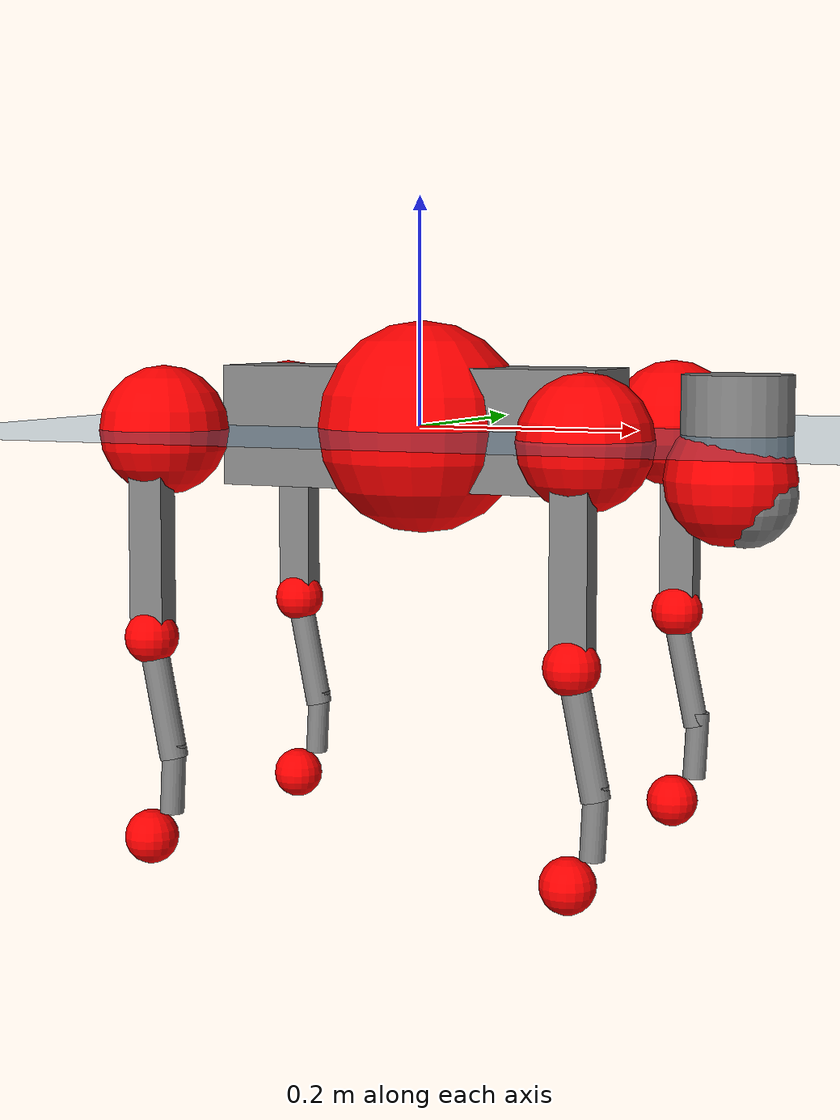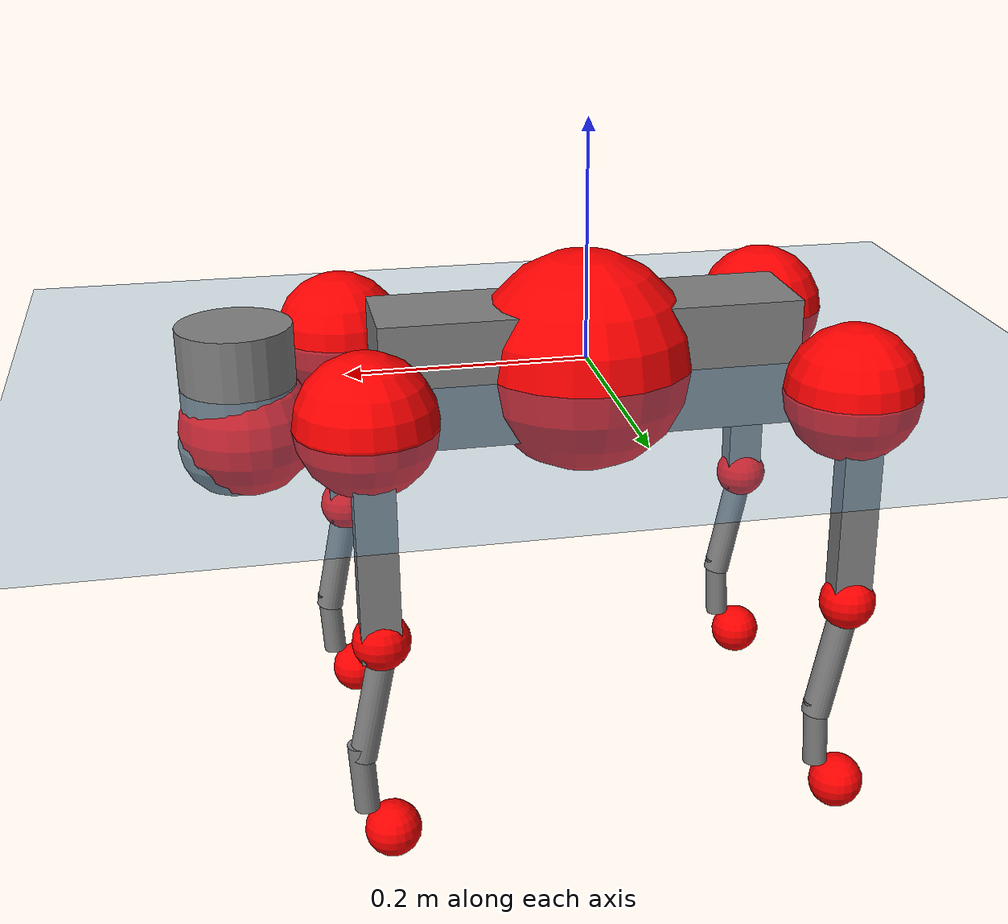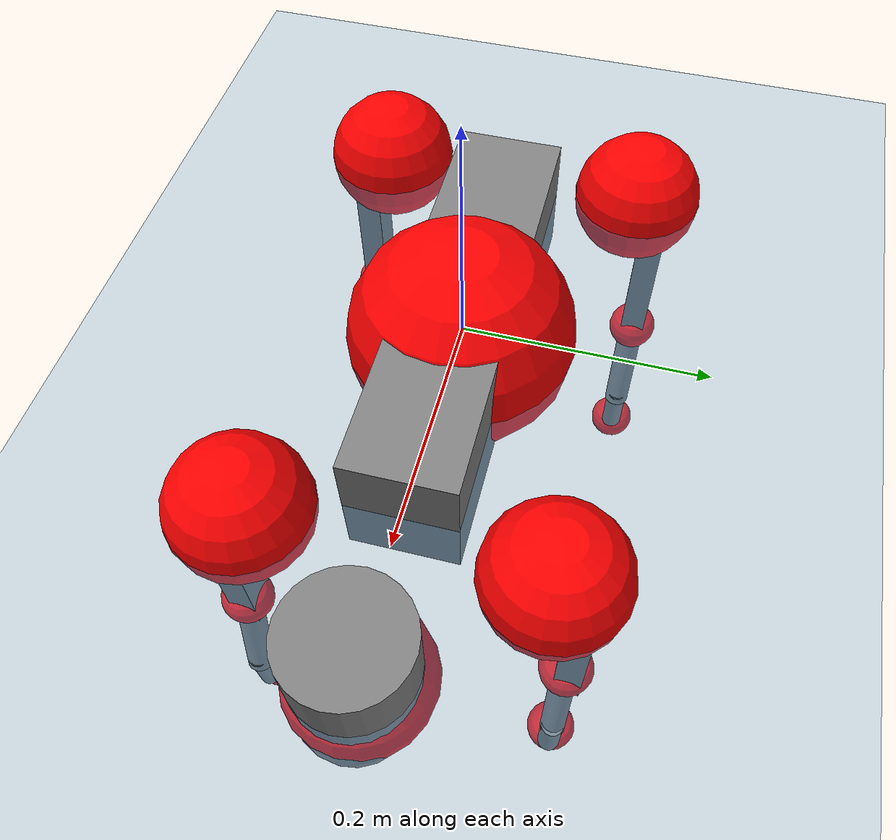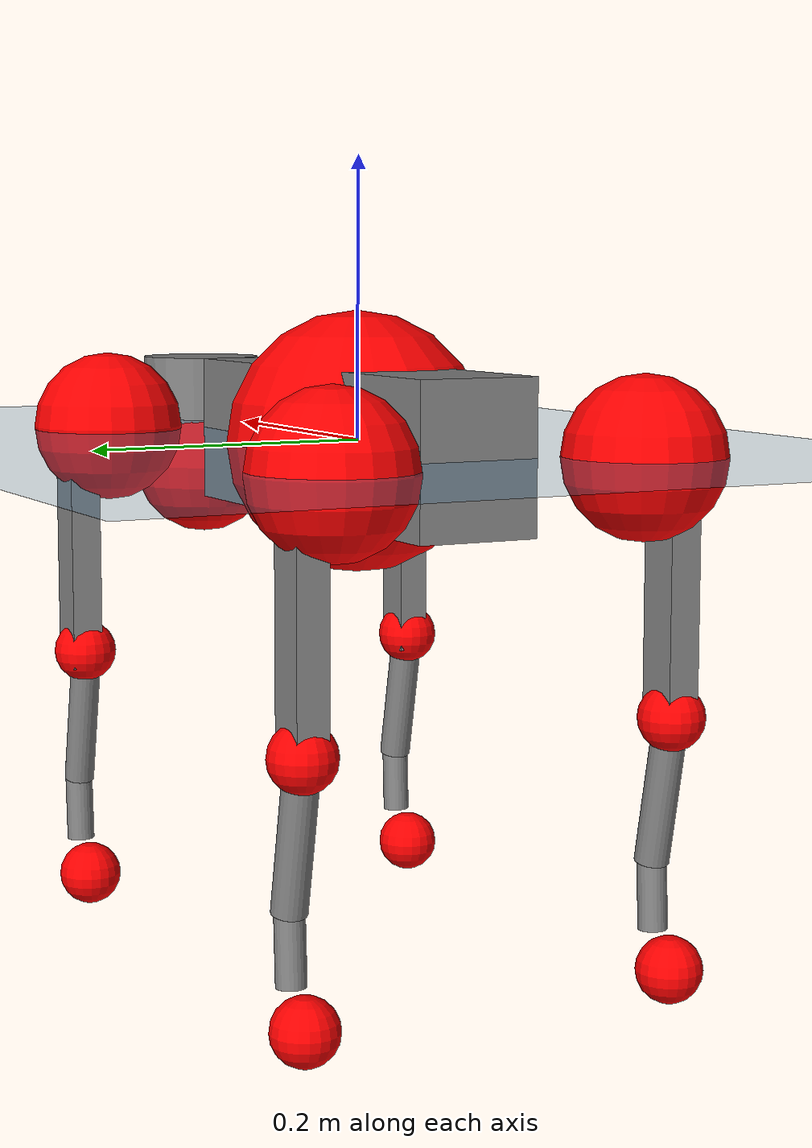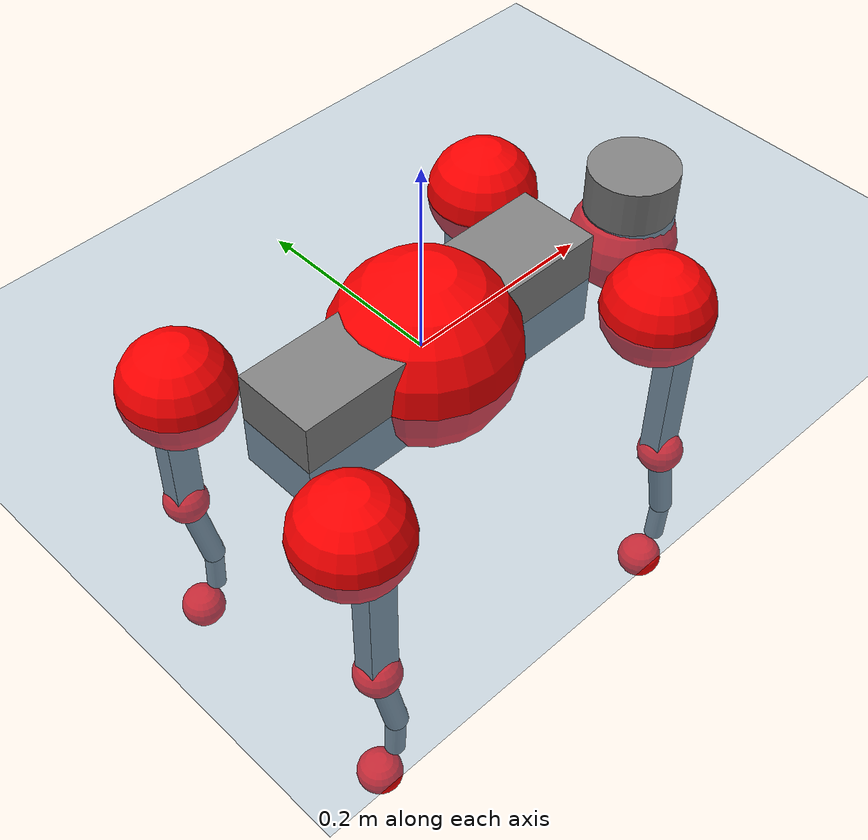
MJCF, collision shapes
<mujoco model="go2">
  <compiler angle="radian" assetdir="assets" balanceinertia="true" inertiafromgeom="false"/>

  <option timestep="0.005" density="1.2" viscosity="2e-05"/>

  <size nkey="1"/>

  <visual>
    <quality shadowsize="8192"/>
    <map shadowclip="0.5"/>
  </visual>

  <default>
    <default class="/">
      <geom contype="0" conaffinity="0" group="1" solref="-1000 -80"/>
      <site size="0.01 0.005 0.005" group="5"/>
      <general forcelimited="true" biastype="affine" gainprm="20" biasprm="0 -20 -0.5"/>
      <default class="go2">
        <joint armature="0.01" damping="0.01" frictionloss="0.2"/>
        <geom condim="1" margin="0.001"/>
        <default class="visual">
          <geom type="mesh" group="2"/>
        </default>
        <default class="collision">
          <geom group="3"/>
          <default class="foot">
            <geom size="0.022 0 0" condim="6" priority="1" friction="0.8 0.02 0.01" solimp="0.015 1 0.022"/>
          </default>
        </default>
        <default class="reward_collision_sphere">
          <geom group="5" rgba="1 0 0 1"/>
        </default>
      </default>
    </default>
  </default>

  <asset>
    <texture type="skybox" colorspace="auto" name="//unnamed_texture_0" builtin="gradient" rgb1="0.95 0.95 0.95" rgb2="0.95 0.95 0.95" width="100" height="600"/>
    <texture type="2d" colorspace="auto" name="texplane" builtin="checker" rgb1="0.345 0.575 0.748" rgb2="0.345 0.575 0.748" markrgb="1 1 1" width="512" height="512"/>
    <material name="MatPlane" class="/" texture="texplane" texuniform="true" texrepeat="2 2" specular="0.9"/>
    <material name="metal" class="/" rgba="0.9 0.95 0.95 1"/>
    <material name="black" class="/" rgba="0 0 0 1"/>
    <material name="white" class="/"/>
    <material name="gray" class="/" rgba="0.671705 0.692426 0.77427 1"/>
    <mesh name="base_0" class="/" file="base_0.obj"/>
    <mesh name="base_1" class="/" file="base_1.obj"/>
    <mesh name="base_2" class="/" file="base_2.obj"/>
    <mesh name="base_3" class="/" file="base_3.obj"/>
    <mesh name="base_4" class="/" file="base_4.obj"/>
    <mesh name="hip_0" class="/" file="hip_0.obj"/>
    <mesh name="hip_1" class="/" file="hip_1.obj"/>
    <mesh name="thigh_0" class="/" file="thigh_0.obj"/>
    <mesh name="thigh_1" class="/" file="thigh_1.obj"/>
    <mesh name="thigh_mirror_0" class="/" file="thigh_mirror_0.obj"/>
    <mesh name="thigh_mirror_1" class="/" file="thigh_mirror_1.obj"/>
    <mesh name="calf_0" class="/" file="calf_0.obj"/>
    <mesh name="calf_1" class="/" file="calf_1.obj"/>
    <mesh name="calf_mirror_0" class="/" file="calf_mirror_0.obj"/>
    <mesh name="calf_mirror_1" class="/" file="calf_mirror_1.obj"/>
    <mesh name="foot" class="/" file="foot.obj"/>
  </asset>

  <worldbody>
    <geom name="floor" class="/" size="100 100 0.125" type="plane" group="0" material="MatPlane"/>
    <light name="toplight_shadow" class="/" pos="0 0 5" dir="0.0990148 0.0990148 -0.990148" type="directional" ambient="0.04 0.04 0.04" diffuse="0.55 0.55 0.55" specular="0.12 0.12 0.12"/>
    <light name="toplight_fill" class="/" pos="0 0 5" dir="0.0990148 0.0990148 -0.990148" type="directional" castshadow="false" ambient="0.04 0.04 0.04" diffuse="0.3 0.3 0.3" specular="0.08 0.08 0.08"/>
    <body name="trunk" childclass="go2" pos="0.00251834 -6.20223e-05 -0.000886535" quat="0.999999 0.00065668 0.00112922 0.000374446">
      <inertial pos="0.01818 0.000785346 -0.00380189" quat="-0.00192546 0.715395 0.00259177 0.698713" mass="5.41726" diaginertia="0.10462 0.0864314 0.00916426"/>
      <joint name="//unnamed_joint_0" type="free" armature="0" damping="0" frictionloss="0"/>
      <geom name="//unnamed_geom_1" class="visual" material="black" mesh="base_0"/>
      <geom name="//unnamed_geom_2" class="visual" material="black" mesh="base_1"/>
      <geom name="//unnamed_geom_3" class="visual" material="black" mesh="base_2"/>
      <geom name="//unnamed_geom_4" class="visual" material="white" mesh="base_3"/>
      <geom name="//unnamed_geom_5" class="visual" material="gray" mesh="base_4"/>
      <geom name="trunk_1" class="collision" size="0.175064 0.0435101 0.0530497" type="box"/>
      <geom name="trunk_2" class="collision" size="0.0465348 0.0418813" pos="0.283724 0 0.00821991" type="cylinder"/>
      <geom name="trunk_3" class="collision" size="0.0437427" pos="0.291688 0 -0.0493195"/>
      <geom name="//unnamed_geom_9" class="reward_collision_sphere" size="0.0930696"/>
      <geom name="//unnamed_geom_10" class="reward_collision_sphere" size="0.0558418" pos="0.278746 0 -0.0369896"/>
      <site name="imu" pos="-0.0247574 0.00710265 0.0484637" size="0.00930696"/>
      <camera name="track" pos="0 -1.94915 0" quat="0.707107 0.707107 0 0" mode="trackcom"/>
      <camera name="ego_camera" pos="0.310603 0 0.0369896" quat="-0.5 -0.5 0.5 0.5"/>
      <body name="FL_hip" pos="0.192756 0.0471098 0.00230032" quat="1 5.56922e-05 -8.58161e-05 0.00020611">
        <inertial pos="-0.00633486 -0.000156735 0.00107738" quat="0.496963 0.500663 0.503965 0.498382" mass="0.533571" diaginertia="0.000879839 0.000525162 0.000180159"/>
        <joint name="FL_hip_joint" pos="0 0 0" axis="0.999917 0.00465478 0.0119751" range="-0.996883 1.06144" armature="0.00912829" damping="0.0144529" frictionloss="0.18412"/>
        <geom name="//unnamed_geom_11" class="visual" material="metal" mesh="hip_0"/>
        <geom name="//unnamed_geom_12" class="visual" material="gray" mesh="hip_1"/>
        <geom name="//unnamed_geom_13" class="collision" size="0.042812 0.0186139" pos="0 0.0779661 0" quat="0.707107 0.707107 0 0" type="cylinder"/>
        <geom name="//unnamed_geom_14" class="reward_collision_sphere" size="0.0558418" pos="0 0.0682204 0"/>
        <body name="FL_thigh" pos="-0.000179023 0.0934943 0.0027383" quat="0.999999 -0.00112703 0.000536988 -0.000140851">
          <inertial pos="-0.00179012 -0.0235539 -0.0294905" quat="0.829377 0.0850652 -0.0205307 0.551794" mass="0.898434" diaginertia="0.0057171 0.00498264 0.000329605"/>
          <joint name="FL_thigh_joint" pos="0 0 0" axis="-0.00166974 0.999975 0.00690929" range="-1.54841 3.48663" armature="0.00918402" damping="0.0118365" frictionloss="0.187508"/>
          <geom name="//unnamed_geom_15" class="visual" material="metal" mesh="thigh_0"/>
          <geom name="//unnamed_geom_16" class="visual" material="gray" mesh="thigh_1"/>
          <geom name="//unnamed_geom_17" class="collision" size="0.0991192 0.011401 0.0158218" pos="0 0 -0.0875421" quat="0.707107 0 0.707107 0" type="box"/>
          <body name="FL_calf" pos="-0.000977058 -0.0029702 -0.174633" quat="1 -0.000448301 0.000347973 -0.000720495">
            <inertial pos="0.00368465 -0.000298025 -0.113463" quat="0.710542 0.002466 -0.00468809 0.703635" mass="0.194262" diaginertia="0.0014694 0.00135897 2.04023e-05"/>
            <joint name="FL_calf_joint" pos="0 0 0" axis="0.01088 0.999916 -0.00699597" stiffness="0.0105644" range="-2.77842 -0.837419" armature="0.00980198" damping="0" frictionloss="0.198238"/>
            <geom name="//unnamed_geom_18" class="visual" material="gray" mesh="calf_0"/>
            <geom name="//unnamed_geom_19" class="visual" material="black" mesh="calf_1"/>
            <geom name="FL_calf0" class="collision" size="0.0111684 0.0558418" pos="0.00796417 0 -0.0493195" quat="0.994493 0 -0.104807 0" type="cylinder"/>
            <geom name="//unnamed_geom_21" class="collision" size="0.0102377 0.0302476" pos="0.0199104 0 -0.121655" quat="0.999688 0 0.0249974 0" type="cylinder"/>
            <geom name="//unnamed_geom_22" class="visual" pos="0 0 -0.175084" quat="1 0 0 0" material="black" mesh="foot"/>
            <geom name="FL_foot" class="foot" size="0.0182996" pos="-0.00199104 0 -0.175084"/>
            <geom name="//unnamed_geom_24" class="reward_collision_sphere" size="0.0232674"/>
            <geom name="//unnamed_geom_25" class="reward_collision_sphere" size="0.0232674" pos="-0.00199104 0 -0.175084"/>
            <site name="FL_foot" class="foot" pos="-0.00199104 0 -0.175084" size="0.00930696"/>
          </body>
        </body>
      </body>
      <body name="FR_hip" pos="0.192283 -0.0460479 -0.0019715" quat="0.999999 0.000438998 4.53746e-05 0.00108268">
        <inertial pos="-0.00372429 -0.00460056 -9.63798e-05" quat="0.48921 0.501541 0.50543 0.503657" mass="0.540667" diaginertia="0.000821767 0.000514552 0.000172212"/>
        <joint name="FR_hip_joint" pos="0 0 0" axis="0.999945 -0.0102322 0.00207376" stiffness="0.00080955" range="-1.054 1.05368" armature="0.00904032" damping="0.0115909" frictionloss="0.161139"/>
        <geom name="//unnamed_geom_26" class="visual" pos="0 1.32926e-09 5.70148e-08" quat="4.63268e-05 1 0 0" material="metal" mesh="hip_0"/>
        <geom name="//unnamed_geom_27" class="visual" pos="0 2.15489e-09 -1.41019e-07" quat="4.63268e-05 1 0 0" material="gray" mesh="hip_1"/>
        <geom name="//unnamed_geom_28" class="collision" size="0.042812 0.0186139" pos="0 -0.0779661 0" quat="0.707107 0.707107 0 0" type="cylinder"/>
        <geom name="//unnamed_geom_29" class="reward_collision_sphere" size="0.0558418" pos="0 -0.0682204 0"/>
        <body name="FR_thigh" pos="0.000422273 -0.0955403 -0.000329054" quat="1 -0.000110139 5.89253e-05 0.000111501">
          <inertial pos="-0.00187041 0.0193798 -0.0265384" quat="0.550866 -0.00988976 0.084348 0.830261" mass="0.939105" diaginertia="0.00576639 0.00509698 0.000336644"/>
          <joint name="FR_thigh_joint" pos="0 0 0" axis="0.00389754 -0.999987 0.00321316" range="-3.47422 1.62084" armature="0.00923486" damping="0.0138755" frictionloss="0.192475"/>
          <geom name="//unnamed_geom_30" class="visual" material="metal" mesh="thigh_mirror_0"/>
          <geom name="//unnamed_geom_31" class="visual" material="gray" mesh="thigh_mirror_1"/>
          <geom name="//unnamed_geom_32" class="collision" size="0.0991192 0.011401 0.0158218" pos="0 0 -0.0875421" quat="0.707107 0 0.707107 0" type="box"/>
          <body name="FR_calf" pos="0.00073912 -0.00298138 -0.175074" quat="1 1.18892e-05 1.58873e-06 -0.000134054">
            <inertial pos="0.00657252 0.000760113 -0.116128" quat="0.703984 0.00384741 0.0123548 0.710098" mass="0.193422" diaginertia="0.00145271 0.00128817 1.9348e-05"/>
            <joint name="FR_calf_joint" pos="0 0 0" axis="0.00074302 -0.999906 -0.0137006" range="0.839045 2.76825" armature="0.00943209" damping="0.0257369" frictionloss="0.183251"/>
            <geom name="//unnamed_geom_33" class="visual" material="gray" mesh="calf_mirror_0"/>
            <geom name="//unnamed_geom_34" class="visual" material="black" mesh="calf_mirror_1"/>
            <geom name="FR_calf0" class="collision" size="0.0120991 0.0558418" pos="0.00995521 0 -0.0493195" quat="0.995004 0 -0.0998334 0" type="cylinder"/>
            <geom name="//unnamed_geom_36" class="collision" size="0.0102377 0.0302476" pos="0.0199104 0 -0.121655" quat="0.999688 0 0.0249974 0" type="cylinder"/>
            <geom name="//unnamed_geom_37" class="visual" pos="0 0 -0.175084" quat="1 0 0 0" material="black" mesh="foot"/>
            <geom name="FR_foot" class="foot" size="0.022036" pos="-0.00199104 0 -0.175084"/>
            <geom name="//unnamed_geom_39" class="reward_collision_sphere" size="0.0232674"/>
            <geom name="//unnamed_geom_40" class="reward_collision_sphere" size="0.0232674" pos="-0.00199104 0 -0.175084"/>
            <site name="FR_foot" class="foot" pos="-0.00199104 0 -0.175084" size="0.00930696"/>
          </body>
        </body>
      </body>
      <body name="RL_hip" pos="-0.193069 0.0459576 -0.0026884" quat="1 6.26836e-05 0.000420517 -7.48399e-05">
        <inertial pos="0.00531522 0.00487431 -0.00221168" quat="0.50586 0.496275 0.506206 0.491499" mass="0.557556" diaginertia="0.000850405 0.00051355 0.000183811"/>
        <joint name="RL_hip_joint" pos="0 0 0" axis="-0.999864 0.0157474 -0.00499354" stiffness="0.0104045" range="-1.03402 1.01013" armature="0.00816316" damping="0.00814915" frictionloss="0.211605"/>
        <geom name="//unnamed_geom_41" class="visual" pos="-1.51172e-09 0 -2.96333e-07" quat="4.63268e-05 0 1 0" material="metal" mesh="hip_0"/>
        <geom name="//unnamed_geom_42" class="visual" pos="-2.45068e-09 0 -2.62805e-07" quat="4.63268e-05 0 1 0" material="gray" mesh="hip_1"/>
        <geom name="//unnamed_geom_43" class="collision" size="0.042812 0.0186139" pos="0 0.0779661 0" quat="0.707107 0.707107 0 0" type="cylinder"/>
        <geom name="//unnamed_geom_44" class="reward_collision_sphere" size="0.0558418" pos="0 0.0682204 0"/>
        <body name="RL_thigh" pos="-0.000207492 0.0894881 0.00224501" quat="1 -0.000274539 9.72688e-05 -0.000145296">
          <inertial pos="-0.00370664 -0.0211695 -0.0279458" quat="0.829275 0.0846865 -0.0203612 0.552011" mass="0.950219" diaginertia="0.00579367 0.00502019 0.000334958"/>
          <joint name="RL_thigh_joint" pos="0 0 0" axis="0.0125671 0.99992 -0.00110207" stiffness="0.0114168" range="-0.518755 4.54559" armature="0.0104176" damping="0.00139307" frictionloss="0.184774"/>
          <geom name="//unnamed_geom_45" class="visual" material="metal" mesh="thigh_0"/>
          <geom name="//unnamed_geom_46" class="visual" material="gray" mesh="thigh_1"/>
          <geom name="//unnamed_geom_47" class="collision" size="0.0991192 0.011401 0.0158218" pos="0 0 -0.0875421" quat="0.707107 0 0.707107 0" type="box"/>
          <body name="RL_calf" pos="0.000120847 -4.73996e-05 -0.17787" quat="1 0.000111986 0.000403992 -0.000127106">
            <inertial pos="0.00636544 0.00214965 -0.115798" quat="0.706849 0.00414461 -0.00206643 0.707349" mass="0.193964" diaginertia="0.00142572 0.00128644 1.9228e-05"/>
            <joint name="RL_calf_joint" pos="0 0 0" axis="0.00244196 0.999995 -0.00216914" range="-2.72651 -0.821118" armature="0.00996506" damping="0" frictionloss="0.210816"/>
            <geom name="//unnamed_geom_48" class="visual" material="gray" mesh="calf_0"/>
            <geom name="//unnamed_geom_49" class="visual" material="black" mesh="calf_1"/>
            <geom name="RL_calf0" class="collision" size="0.0120991 0.0558418" pos="0.00995521 0 -0.0493195" quat="0.995004 0 -0.0998334 0" type="cylinder"/>
            <geom name="//unnamed_geom_51" class="collision" size="0.0102377 0.0302476" pos="0.0199104 0 -0.121655" quat="0.999688 0 0.0249974 0" type="cylinder"/>
            <geom name="//unnamed_geom_52" class="visual" pos="0 0 -0.175084" quat="1 0 0 0" material="black" mesh="foot"/>
            <geom name="RL_foot" class="foot" size="0.0169393" pos="-0.00199104 0 -0.175084"/>
            <geom name="//unnamed_geom_54" class="reward_collision_sphere" size="0.0232674"/>
            <geom name="//unnamed_geom_55" class="reward_collision_sphere" size="0.0232674" pos="-0.00199104 0 -0.175084"/>
            <site name="RL_foot" class="foot" pos="-0.00199104 0 -0.175084" size="0.00930696"/>
          </body>
        </body>
      </body>
      <body name="RR_hip" pos="-0.192509 -0.0470915 -0.00141152" quat="0.999999 -0.00109775 0.000223594 -0.000126905">
        <inertial pos="0.0079714 0.000688046 -0.00288557" quat="0.489955 0.497069 0.502342 0.510411" mass="0.54535" diaginertia="0.000857088 0.000518815 0.000180056"/>
        <joint name="RR_hip_joint" pos="0 0 0" axis="-0.999907 -0.0123723 -0.00580613" stiffness="0.00659359" range="-1.04438 1.02915" armature="0.00885615" damping="0.0124023" frictionloss="0.176253"/>
        <geom name="//unnamed_geom_56" class="visual" pos="1.511e-09 1.32926e-09 -3.53347e-07" quat="2.14617e-09 4.63268e-05 4.63268e-05 -1" material="metal" mesh="hip_0"/>
        <geom name="//unnamed_geom_57" class="visual" pos="2.45248e-09 2.15489e-09 -1.21785e-07" quat="2.14617e-09 4.63268e-05 4.63268e-05 -1" material="gray" mesh="hip_1"/>
        <geom name="//unnamed_geom_58" class="collision" size="0.042812 0.0186139" pos="0 -0.0779661 0" quat="0.707107 0.707107 0 0" type="cylinder"/>
        <geom name="//unnamed_geom_59" class="reward_collision_sphere" size="0.0558418" pos="0 -0.0682204 0"/>
        <body name="RR_thigh" pos="0.00117021 -0.0924803 -0.00221517" quat="1 -0.000124137 -3.31727e-05 5.50781e-05">
          <inertial pos="-0.00258052 0.0216047 -0.0269741" quat="0.550905 -0.0199551 0.084896 0.829999" mass="0.896574" diaginertia="0.00588749 0.0052634 0.000328161"/>
          <joint name="RR_thigh_joint" pos="0 0 0" axis="-0.00777747 -0.999932 -0.00870163" stiffness="0.000832733" range="-4.53706 0.578168" armature="0.0094884" damping="0.0098005" frictionloss="0.17622"/>
          <geom name="//unnamed_geom_60" class="visual" material="metal" mesh="thigh_mirror_0"/>
          <geom name="//unnamed_geom_61" class="visual" material="gray" mesh="thigh_mirror_1"/>
          <geom name="//unnamed_geom_62" class="collision" size="0.0991192 0.011401 0.0158218" pos="0 0 -0.0875421" quat="0.707107 0 0.707107 0" type="box"/>
          <body name="RR_calf" pos="-0.0006086 -0.000830262 -0.174634" quat="1 5.26047e-07 1.84661e-05 -5.00185e-05">
            <inertial pos="0.00369902 -0.000238171 -0.116765" quat="0.70593 -0.0070467 0.00708419 0.708211" mass="0.194945" diaginertia="0.00146192 0.00129865 2.06516e-05"/>
            <joint name="RR_calf_joint" pos="0 0 0" axis="-0.0136014 -0.999804 0.0143613" stiffness="0.000348007" range="0.849004 2.72707" armature="0.00969044" damping="0.0246084" frictionloss="0.193272"/>
            <geom name="//unnamed_geom_63" class="visual" material="gray" mesh="calf_mirror_0"/>
            <geom name="//unnamed_geom_64" class="visual" material="black" mesh="calf_mirror_1"/>
            <geom name="RR_calf0" class="collision" size="0.0120991 0.0558418" pos="0.00995521 0 -0.0493195" quat="0.995004 0 -0.0998334 0" type="cylinder"/>
            <geom name="//unnamed_geom_66" class="collision" size="0.0102377 0.0302476" pos="0.0199104 0 -0.121655" quat="0.999688 0 0.0249974 0" type="cylinder"/>
            <geom name="//unnamed_geom_67" class="visual" pos="0 0 -0.175084" quat="1 0 0 0" material="black" mesh="foot"/>
            <geom name="RR_foot" class="foot" size="0.020556" pos="-0.00199104 0 -0.175084"/>
            <geom name="//unnamed_geom_69" class="reward_collision_sphere" size="0.0232674"/>
            <geom name="//unnamed_geom_70" class="reward_collision_sphere" size="0.0232674" pos="-0.00199104 0 -0.175084"/>
            <site name="RR_foot" class="foot" pos="-0.00199104 0 -0.175084" size="0.00930696"/>
          </body>
        </body>
      </body>
    </body>
  </worldbody>

  <contact>
    <pair class="/" geom1="floor" geom2="FL_foot" name="//unnamed_contact_0"/>
    <pair class="/" geom1="floor" geom2="FR_foot" name="//unnamed_contact_1"/>
    <pair class="/" geom1="floor" geom2="RL_foot" name="//unnamed_contact_2"/>
    <pair class="/" geom1="floor" geom2="RR_foot" name="//unnamed_contact_3"/>
  </contact>

  <actuator>
    <general name="FL_hip" class="/" joint="FL_hip_joint" forcerange="-21.8394 21.8394" gainprm="19.4981" biasprm="0 -19.4981 -0.438825"/>
    <general name="FL_thigh" class="/" joint="FL_thigh_joint" forcerange="-21.0186 21.0186" gainprm="19.4981" biasprm="0 -19.4981 -0.438825"/>
    <general name="FL_calf" class="/" joint="FL_calf_joint" forcerange="-43.5246 43.5246" gainprm="19.4981" biasprm="0 -19.4981 -0.438825"/>
    <general name="FR_hip" class="/" joint="FR_hip_joint" forcerange="-21.5873 21.5873" gainprm="19.4981" biasprm="0 -19.4981 -0.438825"/>
    <general name="FR_thigh" class="/" joint="FR_thigh_joint" forcerange="-23.1179 23.1179" gainprm="19.4981" biasprm="0 -19.4981 -0.438825"/>
    <general name="FR_calf" class="/" joint="FR_calf_joint" forcerange="-41.2087 41.2087" gainprm="19.4981" biasprm="0 -19.4981 -0.438825"/>
    <general name="RL_hip" class="/" joint="RL_hip_joint" forcerange="-24.2159 24.2159" gainprm="19.4981" biasprm="0 -19.4981 -0.438825"/>
    <general name="RL_thigh" class="/" joint="RL_thigh_joint" forcerange="-21.3611 21.3611" gainprm="19.4981" biasprm="0 -19.4981 -0.438825"/>
    <general name="RL_calf" class="/" joint="RL_calf_joint" forcerange="-37.9545 37.9545" gainprm="19.4981" biasprm="0 -19.4981 -0.438825"/>
    <general name="RR_hip" class="/" joint="RR_hip_joint" forcerange="-20.2705 20.2705" gainprm="19.4981" biasprm="0 -19.4981 -0.438825"/>
    <general name="RR_thigh" class="/" joint="RR_thigh_joint" forcerange="-24.3071 24.3071" gainprm="19.4981" biasprm="0 -19.4981 -0.438825"/>
    <general name="RR_calf" class="/" joint="RR_calf_joint" forcerange="-40.294 40.294" gainprm="19.4981" biasprm="0 -19.4981 -0.438825"/>
  </actuator>

  <sensor>
    <gyro site="imu" name="imu_angular_velocity"/>
    <velocimeter site="imu" name="imu_linear_velocity"/>
    <framelinvel objtype="site" objname="FL_foot" name="FL_foot_global_linear_velocity"/>
    <framelinvel objtype="site" objname="FR_foot" name="FR_foot_global_linear_velocity"/>
    <framelinvel objtype="site" objname="RL_foot" name="RL_foot_global_linear_velocity"/>
    <framelinvel objtype="site" objname="RR_foot" name="RR_foot_global_linear_velocity"/>
  </sensor>

  <keyframe>
    <key name="home" qpos="0 0 0.325 1 0 0 0 0.1 0.8 -1.5 -0.1 -0.8 1.5 -0.1 0.8 -1.5 0.1 -0.8 1.5"/>
  </keyframe>
</mujoco>
